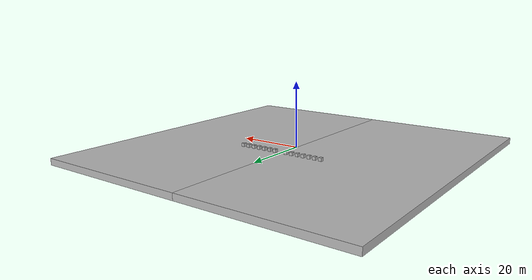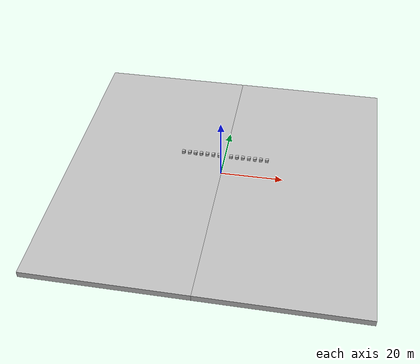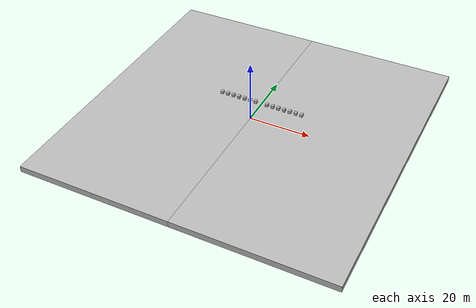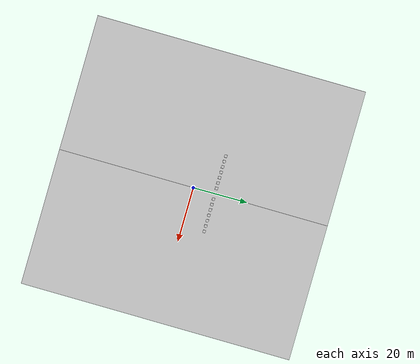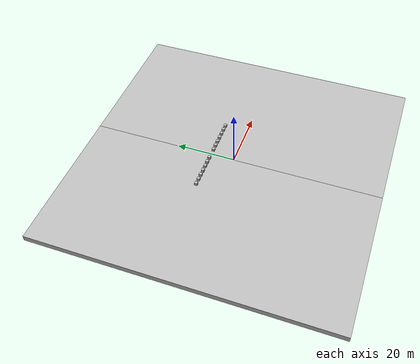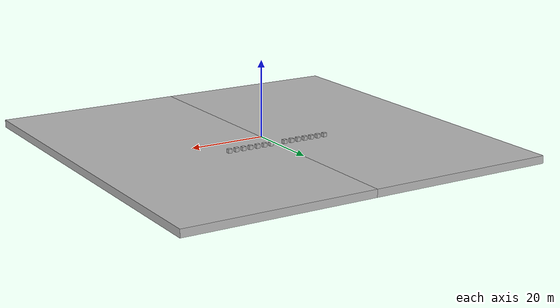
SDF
<?xml version="1.0" ?>
<!-- this file was generated using embedded ruby -->
<sdf version='1.7'>
  <world name='default'>
    <gui>
      <camera name='user_camera'>
        <pose>17 3 22 0 1.1 3.141592653589793</pose>
        <view_controller>orbit</view_controller>
      </camera>
    </gui>
    <light type="directional" name="sun">
      <cast_shadows>true</cast_shadows>
      <pose>0 0 10 0 0 0</pose>
      <diffuse>0.8 0.8 0.8 1</diffuse>
      <specular>0.2 0.2 0.2 1</specular>
      <attenuation>
        <range>1000</range>
        <constant>0.9</constant>
        <linear>0.01</linear>
        <quadratic>0.001</quadratic>
      </attenuation>
      <direction>-0.5 0.1 -0.9</direction>
    </light>

    <gravity>0 -1 -1</gravity>

    <model name="ground_box_mu_low">
      <pose>25.0 0 -1.0 0 0 0</pose>
      <link name="ground_box1">
        <inertial>
          <mass>6</mass>
          <pose>0 0 -1.0 0 0 0</pose>
          <inertia>
            <ixx>5002.0</ixx>
            <iyy>1252.0</iyy>
            <izz>6250.0</izz>
            <ixy>0</ixy>
            <ixz>0</ixz>
            <iyz>0</iyz>
          </inertia>
        </inertial>
        <collision name='collision'>
          <geometry>
            <box>
              <size>50 100 2</size>
            </box>
          </geometry>
          <surface>
            <contact>
              <ode>
                <kp>1e5</kp>
                <kd>1</kd>
                <max_vel>100</max_vel>
                <min_depth>0.001</min_depth>
              </ode>
            </contact>
            <friction>
              <ode>
                <mu>0.9</mu>
                <mu2>0.9</mu2>
              </ode>
            </friction>
          </surface>
        </collision>
        <visual name='visual'>
          <geometry>
            <box>
              <size>50 100 2</size>
            </box>
          </geometry>
        </visual>
      </link>
      <static>1</static>
    </model>
    <model name="ground_box_mu_high">
      <pose>-25.0 0 -1.0 0 0 0</pose>
      <link name="ground_box2">
        <inertial>
          <mass>6</mass>
          <pose>0 0 -1.0 0 0 0</pose>
          <inertia>
            <ixx>5002.0</ixx>
            <iyy>1252.0</iyy>
            <izz>6250.0</izz>
            <ixy>0</ixy>
            <ixz>0</ixz>
            <iyz>0</iyz>
          </inertia>
        </inertial>
        <collision name='collision'>
          <geometry>
            <box>
              <size>50 100 2</size>
            </box>
          </geometry>
          <surface>
            <contact>
              <ode>
                <kp>1e5</kp>
                <kd>1</kd>
                <max_vel>100</max_vel>
                <min_depth>0.001</min_depth>
              </ode>
            </contact>
            <friction>
              <ode>
                <mu>1.1</mu>
                <mu2>1.1</mu2>
              </ode>
            </friction>
          </surface>
        </collision>
        <visual name='visual'>
          <geometry>
            <box>
              <size>50 100 2</size>
            </box>
          </geometry>
        </visual>
      </link>
      <static>1</static>
    </model>

    <model name="box_01_low">
      <allow_auto_disable>0</allow_auto_disable>
      <pose>2 8 0.5 0 0 0</pose>
      <link name="link">
        <inertial>
          <mass>6</mass>
          <pose>0 0 -0.5 0 0 0</pose>
          <inertia>
            <ixx>1.0</ixx>
            <iyy>1.0</iyy>
            <izz>1.0</izz>
            <ixy>0</ixy>
            <ixz>0</ixz>
            <iyz>0</iyz>
          </inertia>
        </inertial>
        <collision name='collision'>
          <geometry>
            <box>
              <size>1 1 1</size>
            </box>
          </geometry>
          <surface>
            <contact>
              <ode>
                <kp>1e5</kp>
                <kd>1</kd>
                <max_vel>100</max_vel>
                <min_depth>0.001</min_depth>
              </ode>
            </contact>
            <friction>
              <ode>
                <mu>0.985</mu>
                <mu2>0.985</mu2>
              </ode>
            </friction>
          </surface>
        </collision>
        <visual name='visual'>
          <geometry>
            <box>
              <size>1 1 1</size>
            </box>
          </geometry>
        </visual>
      </link>
    </model>
    <model name="box_01_high">
      <allow_auto_disable>0</allow_auto_disable>
      <pose>-2 8 0.5 0 0 0</pose>
      <link name="link">
        <inertial>
          <mass>6</mass>
          <pose>0 0 -0.5 0 0 0</pose>
          <inertia>
            <ixx>1.0</ixx>
            <iyy>1.0</iyy>
            <izz>1.0</izz>
            <ixy>0</ixy>
            <ixz>0</ixz>
            <iyz>0</iyz>
          </inertia>
        </inertial>
        <collision name='collision'>
          <geometry>
            <box>
              <size>1 1 1</size>
            </box>
          </geometry>
          <surface>
            <contact>
              <ode>
                <kp>1e5</kp>
                <kd>1</kd>
                <max_vel>100</max_vel>
                <min_depth>0.001</min_depth>
              </ode>
            </contact>
            <friction>
              <ode>
                <mu>0.985</mu>
                <mu2>0.985</mu2>
              </ode>
            </friction>
          </surface>
        </collision>
        <visual name='visual'>
          <geometry>
            <box>
              <size>1 1 1</size>
            </box>
          </geometry>
        </visual>
      </link>
    </model>

    <model name="box_02_low">
      <allow_auto_disable>0</allow_auto_disable>
      <pose>4 8 0.5 0 0 0</pose>
      <link name="link">
        <inertial>
          <mass>6</mass>
          <pose>0 0 -0.5 0 0 0</pose>
          <inertia>
            <ixx>1.0</ixx>
            <iyy>1.0</iyy>
            <izz>1.0</izz>
            <ixy>0</ixy>
            <ixz>0</ixz>
            <iyz>0</iyz>
          </inertia>
        </inertial>
        <collision name='collision'>
          <geometry>
            <box>
              <size>1 1 1</size>
            </box>
          </geometry>
          <surface>
            <contact>
              <ode>
                <kp>1e5</kp>
                <kd>1</kd>
                <max_vel>100</max_vel>
                <min_depth>0.001</min_depth>
              </ode>
            </contact>
            <friction>
              <ode>
                <mu>0.99</mu>
                <mu2>0.99</mu2>
              </ode>
            </friction>
          </surface>
        </collision>
        <visual name='visual'>
          <geometry>
            <box>
              <size>1 1 1</size>
            </box>
          </geometry>
        </visual>
      </link>
    </model>
    <model name="box_02_high">
      <allow_auto_disable>0</allow_auto_disable>
      <pose>-4 8 0.5 0 0 0</pose>
      <link name="link">
        <inertial>
          <mass>6</mass>
          <pose>0 0 -0.5 0 0 0</pose>
          <inertia>
            <ixx>1.0</ixx>
            <iyy>1.0</iyy>
            <izz>1.0</izz>
            <ixy>0</ixy>
            <ixz>0</ixz>
            <iyz>0</iyz>
          </inertia>
        </inertial>
        <collision name='collision'>
          <geometry>
            <box>
              <size>1 1 1</size>
            </box>
          </geometry>
          <surface>
            <contact>
              <ode>
                <kp>1e5</kp>
                <kd>1</kd>
                <max_vel>100</max_vel>
                <min_depth>0.001</min_depth>
              </ode>
            </contact>
            <friction>
              <ode>
                <mu>0.99</mu>
                <mu2>0.99</mu2>
              </ode>
            </friction>
          </surface>
        </collision>
        <visual name='visual'>
          <geometry>
            <box>
              <size>1 1 1</size>
            </box>
          </geometry>
        </visual>
      </link>
    </model>

    <model name="box_03_low">
      <allow_auto_disable>0</allow_auto_disable>
      <pose>6 8 0.5 0 0 0</pose>
      <link name="link">
        <inertial>
          <mass>6</mass>
          <pose>0 0 -0.5 0 0 0</pose>
          <inertia>
            <ixx>1.0</ixx>
            <iyy>1.0</iyy>
            <izz>1.0</izz>
            <ixy>0</ixy>
            <ixz>0</ixz>
            <iyz>0</iyz>
          </inertia>
        </inertial>
        <collision name='collision'>
          <geometry>
            <box>
              <size>1 1 1</size>
            </box>
          </geometry>
          <surface>
            <contact>
              <ode>
                <kp>1e5</kp>
                <kd>1</kd>
                <max_vel>100</max_vel>
                <min_depth>0.001</min_depth>
              </ode>
            </contact>
            <friction>
              <ode>
                <mu>0.995</mu>
                <mu2>0.995</mu2>
              </ode>
            </friction>
          </surface>
        </collision>
        <visual name='visual'>
          <geometry>
            <box>
              <size>1 1 1</size>
            </box>
          </geometry>
        </visual>
      </link>
    </model>
    <model name="box_03_high">
      <allow_auto_disable>0</allow_auto_disable>
      <pose>-6 8 0.5 0 0 0</pose>
      <link name="link">
        <inertial>
          <mass>6</mass>
          <pose>0 0 -0.5 0 0 0</pose>
          <inertia>
            <ixx>1.0</ixx>
            <iyy>1.0</iyy>
            <izz>1.0</izz>
            <ixy>0</ixy>
            <ixz>0</ixz>
            <iyz>0</iyz>
          </inertia>
        </inertial>
        <collision name='collision'>
          <geometry>
            <box>
              <size>1 1 1</size>
            </box>
          </geometry>
          <surface>
            <contact>
              <ode>
                <kp>1e5</kp>
                <kd>1</kd>
                <max_vel>100</max_vel>
                <min_depth>0.001</min_depth>
              </ode>
            </contact>
            <friction>
              <ode>
                <mu>0.995</mu>
                <mu2>0.995</mu2>
              </ode>
            </friction>
          </surface>
        </collision>
        <visual name='visual'>
          <geometry>
            <box>
              <size>1 1 1</size>
            </box>
          </geometry>
        </visual>
      </link>
    </model>

    <model name="box_04_low">
      <allow_auto_disable>0</allow_auto_disable>
      <pose>8 8 0.5 0 0 0</pose>
      <link name="link">
        <inertial>
          <mass>6</mass>
          <pose>0 0 -0.5 0 0 0</pose>
          <inertia>
            <ixx>1.0</ixx>
            <iyy>1.0</iyy>
            <izz>1.0</izz>
            <ixy>0</ixy>
            <ixz>0</ixz>
            <iyz>0</iyz>
          </inertia>
        </inertial>
        <collision name='collision'>
          <geometry>
            <box>
              <size>1 1 1</size>
            </box>
          </geometry>
          <surface>
            <contact>
              <ode>
                <kp>1e5</kp>
                <kd>1</kd>
                <max_vel>100</max_vel>
                <min_depth>0.001</min_depth>
              </ode>
            </contact>
            <friction>
              <ode>
                <mu>1</mu>
                <mu2>1</mu2>
              </ode>
            </friction>
          </surface>
        </collision>
        <visual name='visual'>
          <geometry>
            <box>
              <size>1 1 1</size>
            </box>
          </geometry>
        </visual>
      </link>
    </model>
    <model name="box_04_high">
      <allow_auto_disable>0</allow_auto_disable>
      <pose>-8 8 0.5 0 0 0</pose>
      <link name="link">
        <inertial>
          <mass>6</mass>
          <pose>0 0 -0.5 0 0 0</pose>
          <inertia>
            <ixx>1.0</ixx>
            <iyy>1.0</iyy>
            <izz>1.0</izz>
            <ixy>0</ixy>
            <ixz>0</ixz>
            <iyz>0</iyz>
          </inertia>
        </inertial>
        <collision name='collision'>
          <geometry>
            <box>
              <size>1 1 1</size>
            </box>
          </geometry>
          <surface>
            <contact>
              <ode>
                <kp>1e5</kp>
                <kd>1</kd>
                <max_vel>100</max_vel>
                <min_depth>0.001</min_depth>
              </ode>
            </contact>
            <friction>
              <ode>
                <mu>1</mu>
                <mu2>1</mu2>
              </ode>
            </friction>
          </surface>
        </collision>
        <visual name='visual'>
          <geometry>
            <box>
              <size>1 1 1</size>
            </box>
          </geometry>
        </visual>
      </link>
    </model>

    <model name="box_05_low">
      <allow_auto_disable>0</allow_auto_disable>
      <pose>10 8 0.5 0 0 0</pose>
      <link name="link">
        <inertial>
          <mass>6</mass>
          <pose>0 0 -0.5 0 0 0</pose>
          <inertia>
            <ixx>1.0</ixx>
            <iyy>1.0</iyy>
            <izz>1.0</izz>
            <ixy>0</ixy>
            <ixz>0</ixz>
            <iyz>0</iyz>
          </inertia>
        </inertial>
        <collision name='collision'>
          <geometry>
            <box>
              <size>1 1 1</size>
            </box>
          </geometry>
          <surface>
            <contact>
              <ode>
                <kp>1e5</kp>
                <kd>1</kd>
                <max_vel>100</max_vel>
                <min_depth>0.001</min_depth>
              </ode>
            </contact>
            <friction>
              <ode>
                <mu>1.005</mu>
                <mu2>1.005</mu2>
              </ode>
            </friction>
          </surface>
        </collision>
        <visual name='visual'>
          <geometry>
            <box>
              <size>1 1 1</size>
            </box>
          </geometry>
        </visual>
      </link>
    </model>
    <model name="box_05_high">
      <allow_auto_disable>0</allow_auto_disable>
      <pose>-10 8 0.5 0 0 0</pose>
      <link name="link">
        <inertial>
          <mass>6</mass>
          <pose>0 0 -0.5 0 0 0</pose>
          <inertia>
            <ixx>1.0</ixx>
            <iyy>1.0</iyy>
            <izz>1.0</izz>
            <ixy>0</ixy>
            <ixz>0</ixz>
            <iyz>0</iyz>
          </inertia>
        </inertial>
        <collision name='collision'>
          <geometry>
            <box>
              <size>1 1 1</size>
            </box>
          </geometry>
          <surface>
            <contact>
              <ode>
                <kp>1e5</kp>
                <kd>1</kd>
                <max_vel>100</max_vel>
                <min_depth>0.001</min_depth>
              </ode>
            </contact>
            <friction>
              <ode>
                <mu>1.005</mu>
                <mu2>1.005</mu2>
              </ode>
            </friction>
          </surface>
        </collision>
        <visual name='visual'>
          <geometry>
            <box>
              <size>1 1 1</size>
            </box>
          </geometry>
        </visual>
      </link>
    </model>

    <model name="box_06_low">
      <allow_auto_disable>0</allow_auto_disable>
      <pose>12 8 0.5 0 0 0</pose>
      <link name="link">
        <inertial>
          <mass>6</mass>
          <pose>0 0 -0.5 0 0 0</pose>
          <inertia>
            <ixx>1.0</ixx>
            <iyy>1.0</iyy>
            <izz>1.0</izz>
            <ixy>0</ixy>
            <ixz>0</ixz>
            <iyz>0</iyz>
          </inertia>
        </inertial>
        <collision name='collision'>
          <geometry>
            <box>
              <size>1 1 1</size>
            </box>
          </geometry>
          <surface>
            <contact>
              <ode>
                <kp>1e5</kp>
                <kd>1</kd>
                <max_vel>100</max_vel>
                <min_depth>0.001</min_depth>
              </ode>
            </contact>
            <friction>
              <ode>
                <mu>1.01</mu>
                <mu2>1.01</mu2>
              </ode>
            </friction>
          </surface>
        </collision>
        <visual name='visual'>
          <geometry>
            <box>
              <size>1 1 1</size>
            </box>
          </geometry>
        </visual>
      </link>
    </model>
    <model name="box_06_high">
      <allow_auto_disable>0</allow_auto_disable>
      <pose>-12 8 0.5 0 0 0</pose>
      <link name="link">
        <inertial>
          <mass>6</mass>
          <pose>0 0 -0.5 0 0 0</pose>
          <inertia>
            <ixx>1.0</ixx>
            <iyy>1.0</iyy>
            <izz>1.0</izz>
            <ixy>0</ixy>
            <ixz>0</ixz>
            <iyz>0</iyz>
          </inertia>
        </inertial>
        <collision name='collision'>
          <geometry>
            <box>
              <size>1 1 1</size>
            </box>
          </geometry>
          <surface>
            <contact>
              <ode>
                <kp>1e5</kp>
                <kd>1</kd>
                <max_vel>100</max_vel>
                <min_depth>0.001</min_depth>
              </ode>
            </contact>
            <friction>
              <ode>
                <mu>1.01</mu>
                <mu2>1.01</mu2>
              </ode>
            </friction>
          </surface>
        </collision>
        <visual name='visual'>
          <geometry>
            <box>
              <size>1 1 1</size>
            </box>
          </geometry>
        </visual>
      </link>
    </model>

    <model name="box_07_low">
      <allow_auto_disable>0</allow_auto_disable>
      <pose>14 8 0.5 0 0 0</pose>
      <link name="link">
        <inertial>
          <mass>6</mass>
          <pose>0 0 -0.5 0 0 0</pose>
          <inertia>
            <ixx>1.0</ixx>
            <iyy>1.0</iyy>
            <izz>1.0</izz>
            <ixy>0</ixy>
            <ixz>0</ixz>
            <iyz>0</iyz>
          </inertia>
        </inertial>
        <collision name='collision'>
          <geometry>
            <box>
              <size>1 1 1</size>
            </box>
          </geometry>
          <surface>
            <contact>
              <ode>
                <kp>1e5</kp>
                <kd>1</kd>
                <max_vel>100</max_vel>
                <min_depth>0.001</min_depth>
              </ode>
            </contact>
            <friction>
              <ode>
                <mu>1.015</mu>
                <mu2>1.015</mu2>
              </ode>
            </friction>
          </surface>
        </collision>
        <visual name='visual'>
          <geometry>
            <box>
              <size>1 1 1</size>
            </box>
          </geometry>
        </visual>
      </link>
    </model>
    <model name="box_07_high">
      <allow_auto_disable>0</allow_auto_disable>
      <pose>-14 8 0.5 0 0 0</pose>
      <link name="link">
        <inertial>
          <mass>6</mass>
          <pose>0 0 -0.5 0 0 0</pose>
          <inertia>
            <ixx>1.0</ixx>
            <iyy>1.0</iyy>
            <izz>1.0</izz>
            <ixy>0</ixy>
            <ixz>0</ixz>
            <iyz>0</iyz>
          </inertia>
        </inertial>
        <collision name='collision'>
          <geometry>
            <box>
              <size>1 1 1</size>
            </box>
          </geometry>
          <surface>
            <contact>
              <ode>
                <kp>1e5</kp>
                <kd>1</kd>
                <max_vel>100</max_vel>
                <min_depth>0.001</min_depth>
              </ode>
            </contact>
            <friction>
              <ode>
                <mu>1.015</mu>
                <mu2>1.015</mu2>
              </ode>
            </friction>
          </surface>
        </collision>
        <visual name='visual'>
          <geometry>
            <box>
              <size>1 1 1</size>
            </box>
          </geometry>
        </visual>
      </link>
    </model>

  </world>
</sdf>
